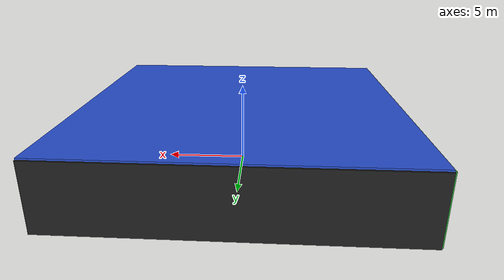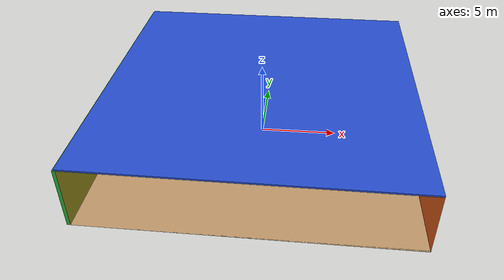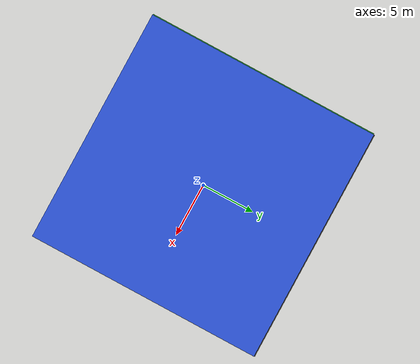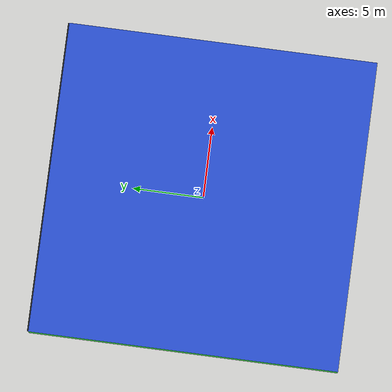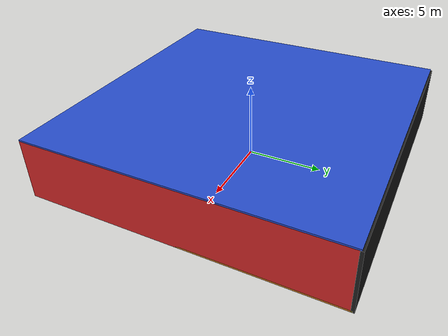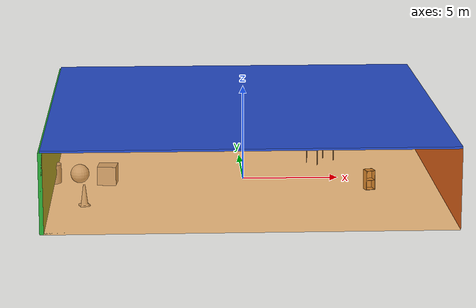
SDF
<sdf version="1.4">
 <world name="default">
  <physics type="ode">
   <max_step_size>0.001</max_step_size>
   <real_time_factor>1</real_time_factor>
   <real_time_update_rate>1000</real_time_update_rate>
   <gravity>0 0 -9.8</gravity>
  </physics>
  <scene><ambient>0.4 0.4 0.4 1</ambient><background>0.7 0.7 0.7 1</background><shadows>1</shadows></scene>
  <model name="Surrounding">
   <static>1</static>
   <link name="Ceiling">
    <collision name="Ceiling_Collision"><geometry><box><size>20 20 0.1</size></box></geometry></collision>
    <visual name="Ceiling_Visual">
     <geometry><box><size>20 20 0.1</size></box></geometry>
     <material>
      <script><uri>file://media/materials/scripts/gazebo.material</uri><name>Gazebo/BlueGlow</name></script>
     </material>
    </visual>
    <pose>0 0 4.05 0 0 0</pose>
   </link>
   <link name="Wall_South">
    <collision name="Wall_South_Collision">
     <geometry><box><size>20 0 4</size></box></geometry>
     <pose>0 0 2 0 -0 0</pose>
    </collision>
    <visual name="Wall_South_Visual">
     <pose>0 0 2 0 -0 0</pose>
     <geometry><box><size>20 0 4</size></box></geometry>
     <material>
      <script>
       <uri>file://media/materials/scripts/gazebo.material</uri>
       <name>Gazebo/OrangeTransparent</name>
      </script>
     </material>
    </visual>
    <velocity_decay><linear>0</linear><angular>0</angular></velocity_decay>
    <pose>0 -10 0 0 -0 0</pose>
   </link>
   <link name="Wall_East">
    <collision name="Wall_21_Collision">
     <geometry><box><size>20 0 4</size></box></geometry>
     <pose>0 0 2 0 -0 0</pose>
    </collision>
    <visual name="Wall_21_Visual">
     <pose>0 0 2 0 -0 0</pose>
     <geometry><box><size>20 0 4</size></box></geometry>
     <material>
      <script><uri>file://media/materials/scripts/gazebo.material</uri><name>Gazebo/RedBright</name></script>
     </material>
    </visual>
    <velocity_decay><linear>0</linear><angular>0</angular></velocity_decay>
    <pose>10 0 0 0 -0 1.5708</pose>
   </link>
   <link name="Wall_North">
    <collision name="Wall_22_Collision">
     <geometry><box><size>20 0.2 4</size></box></geometry>
     <pose>0 0 2 0 -0 0</pose>
    </collision>
    <visual name="Wall_22_Visual">
     <pose>0 0 2 0 -0 0</pose>
     <geometry><box><size>20 0.2 4</size></box></geometry>
     <material>
      <script><uri>file://media/materials/scripts/gazebo.material</uri><name>Gazebo/FlatBlack</name></script>
     </material>
    </visual>
    <velocity_decay><linear>0</linear><angular>0</angular></velocity_decay>
    <pose>0 10 0 0 -0 0</pose>
   </link>
   <link name="Wall_West">
    <collision name="Wall_23_Collision">
     <geometry><box><size>20 0.2 4</size></box></geometry>
     <pose>0 0 2 0 -0 0</pose>
    </collision>
    <visual name="Wall_23_Visual">
     <pose>0 0 2 0 -0 0</pose>
     <geometry><box><size>20 0.2 4</size></box></geometry>
     <material>
      <script><uri>file://media/materials/scripts/gazebo.material</uri><name>Gazebo/Green</name></script>
     </material>
    </visual>
    <velocity_decay><linear>0</linear><angular>0</angular></velocity_decay>
    <pose>-10 0 0 0 0 -1.5708</pose>
   </link>
   <link name="Ground_link">
    <collision name="collision">
     <pose>0 0 .05 0 -0 0</pose>
     <geometry><box><size>20 20 0.1</size></box></geometry>
    </collision>
    <visual name="visual">
     <pose>0 0 .05 0 -0 0</pose>
     <geometry><box><size>20 20 0.1</size></box></geometry>
     <material>
      <script>
       <uri>file://media/materials/scripts/gazebo.material</uri>
       <name>Gazebo/YellowTransparent</name>
      </script>
     </material>
    </visual>
   </link>
   <static>1</static>
  </model>
  <spherical_coordinates>
   <surface_model>EARTH_WGS84</surface_model>
   <latitude_deg>0</latitude_deg>
   <longitude_deg>0</longitude_deg>
   <elevation>0</elevation>
   <heading_deg>0</heading_deg>
  </spherical_coordinates>
  <light name="lightball_0" type="diffuse">
   <diffuse>0.8 0.8 0.8 1</diffuse>
   <specular>0.2 0.2 0.2 1</specular>
   <attenuation>
    <range>100</range>
    <constant>0.7</constant>
    <linear>0.01</linear>
    <quadratic>0.001</quadratic>
   </attenuation>
   <direction>-0.5 0.1 -0.9</direction>
   <pose>5.35583647014 -6.26872865497 2.7383548237 0 0 0</pose>
  </light>
  <light name="lightball_1" type="diffuse">
   <diffuse>0.8 0.8 0.8 1</diffuse>
   <specular>0.2 0.2 0.2 1</specular>
   <attenuation>
    <range>100</range>
    <constant>0.7</constant>
    <linear>0.01</linear>
    <quadratic>0.001</quadratic>
   </attenuation>
   <direction>-0.5 0.1 -0.9</direction>
   <pose>7.37864531263 -0.694443096947 3.11158615706 0 0 0</pose>
  </light>
  <light name="lightball_2" type="diffuse">
   <diffuse>0.8 0.8 0.8 1</diffuse>
   <specular>0.2 0.2 0.2 1</specular>
   <attenuation>
    <range>100</range>
    <constant>0.7</constant>
    <linear>0.01</linear>
    <quadratic>0.001</quadratic>
   </attenuation>
   <direction>-0.5 0.1 -0.9</direction>
   <pose>-8.6027419469 -4.16977454475 2.6719190572 0 0 0</pose>
  </light>
  <light name="lightball_3" type="diffuse">
   <diffuse>0.8 0.8 0.8 1</diffuse>
   <specular>0.2 0.2 0.2 1</specular>
   <attenuation>
    <range>100</range>
    <constant>0.7</constant>
    <linear>0.01</linear>
    <quadratic>0.001</quadratic>
   </attenuation>
   <direction>-0.5 0.1 -0.9</direction>
   <pose>3.0292403068 8.04551230369 3.76613373433 0 0 0</pose>
  </light>
  <light name="lightball_4" type="diffuse">
   <diffuse>0.8 0.8 0.8 1</diffuse>
   <specular>0.2 0.2 0.2 1</specular>
   <attenuation>
    <range>100</range>
    <constant>0.7</constant>
    <linear>0.01</linear>
    <quadratic>0.001</quadratic>
   </attenuation>
   <direction>-0.5 0.1 -0.9</direction>
   <pose>-4.08245771291 -1.04496222499 2.56494993358 0 0 0</pose>
  </light>
  <light name="lightball_5" type="diffuse">
   <diffuse>0.8 0.8 0.8 1</diffuse>
   <specular>0.2 0.2 0.2 1</specular>
   <attenuation>
    <range>100</range>
    <constant>0.7</constant>
    <linear>0.01</linear>
    <quadratic>0.001</quadratic>
   </attenuation>
   <direction>-0.5 0.1 -0.9</direction>
   <pose>7.32732426887 9.82869628463 1.01582549307 0 0 0</pose>
  </light>
  <light name="lightball_6" type="diffuse">
   <diffuse>0.8 0.8 0.8 1</diffuse>
   <specular>0.2 0.2 0.2 1</specular>
   <attenuation>
    <range>100</range>
    <constant>0.7</constant>
    <linear>0.01</linear>
    <quadratic>0.001</quadratic>
   </attenuation>
   <direction>-0.5 0.1 -0.9</direction>
   <pose>-6.886342215 -2.83808916721 3.55266516698 0 0 0</pose>
  </light>
  <light name="lightball_7" type="diffuse">
   <diffuse>0.8 0.8 0.8 1</diffuse>
   <specular>0.2 0.2 0.2 1</specular>
   <attenuation>
    <range>100</range>
    <constant>0.7</constant>
    <linear>0.01</linear>
    <quadratic>0.001</quadratic>
   </attenuation>
   <direction>-0.5 0.1 -0.9</direction>
   <pose>-8.27300479282 -5.37761700418 2.41635657216 0 0 0</pose>
  </light>
  <light name="lightball_8" type="diffuse">
   <diffuse>0.8 0.8 0.8 1</diffuse>
   <specular>0.2 0.2 0.2 1</specular>
   <attenuation>
    <range>100</range>
    <constant>0.7</constant>
    <linear>0.01</linear>
    <quadratic>0.001</quadratic>
   </attenuation>
   <direction>-0.5 0.1 -0.9</direction>
   <pose>8.99907744045 9.62785168899 3.16960221409 0 0 0</pose>
  </light>
  <light name="lightball_9" type="diffuse">
   <diffuse>0.8 0.8 0.8 1</diffuse>
   <specular>0.2 0.2 0.2 1</specular>
   <attenuation>
    <range>100</range>
    <constant>0.7</constant>
    <linear>0.01</linear>
    <quadratic>0.001</quadratic>
   </attenuation>
   <direction>-0.5 0.1 -0.9</direction>
   <pose>-8.89895964392 -0.51416048478 1.28644748756 0 0 0</pose>
  </light>
  <light name="lightball_10" type="diffuse">
   <diffuse>0.8 0.8 0.8 1</diffuse>
   <specular>0.2 0.2 0.2 1</specular>
   <attenuation>
    <range>100</range>
    <constant>0.7</constant>
    <linear>0.01</linear>
    <quadratic>0.001</quadratic>
   </attenuation>
   <direction>-0.5 0.1 -0.9</direction>
   <pose>0.130882321494 -3.13068602213 2.9917387268 0 0 0</pose>
  </light>
  <light name="lightball_11" type="diffuse">
   <diffuse>0.8 0.8 0.8 1</diffuse>
   <specular>0.2 0.2 0.2 1</specular>
   <attenuation>
    <range>100</range>
    <constant>0.7</constant>
    <linear>0.01</linear>
    <quadratic>0.001</quadratic>
   </attenuation>
   <direction>-0.5 0.1 -0.9</direction>
   <pose>-7.66574911584 6.86390882541 1.2959888327 0 0 0</pose>
  </light>
  <light name="lightball_12" type="diffuse">
   <diffuse>0.8 0.8 0.8 1</diffuse>
   <specular>0.2 0.2 0.2 1</specular>
   <attenuation>
    <range>100</range>
    <constant>0.7</constant>
    <linear>0.01</linear>
    <quadratic>0.001</quadratic>
   </attenuation>
   <direction>-0.5 0.1 -0.9</direction>
   <pose>0.861793830483 -5.18169751156 3.0741204678 0 0 0</pose>
  </light>
  <light name="lightball_13" type="diffuse">
   <diffuse>0.8 0.8 0.8 1</diffuse>
   <specular>0.2 0.2 0.2 1</specular>
   <attenuation>
    <range>100</range>
    <constant>0.7</constant>
    <linear>0.01</linear>
    <quadratic>0.001</quadratic>
   </attenuation>
   <direction>-0.5 0.1 -0.9</direction>
   <pose>2.92796225744 2.95462402122 3.2504960193 0 0 0</pose>
  </light>
  <include>
   <uri>model://construction_cone</uri>
   <pose>-8.16642039797 -4.92952543528 0 0 0 1.92959855529</pose>
  </include>
  <include>
   <uri>model://textured_shapes</uri>
   <pose>-8.6643614615 1.41582110511 0 0 0 1.46353230418</pose>
  </include>
  <include><uri>model://table</uri><pose>-8.53071910296 6.86456577452 0 0 0 2.0659692025</pose></include>
  <include><uri>model://table</uri><pose>4.39980426162 3.46840079254 0 0 0 0.779376250528</pose></include>
  <include><uri>model://cabinet</uri><pose>6.45012878579 -2.35217781961 0 0 0 1.85650453615</pose></include>
 </world>
</sdf>

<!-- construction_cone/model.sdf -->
<sdf version="1.5">
  <model name="Construction Cone">
    <link name="link">
      <collision name="collision">
        <geometry>
          <mesh>
            <scale>10 10 10</scale>
            <uri>file://isr-testbed/construction_cone/meshes/construction_cone.dae</uri>
          </mesh>
        </geometry>
      </collision>
      <visual name="visual">
        <geometry>
          <mesh>
            <scale>10 10 10</scale>
            <uri>file://isr-testbed/construction_cone/meshes/construction_cone.dae</uri>
          </mesh>
        </geometry>
      </visual>
    </link>
  </model>
</sdf>

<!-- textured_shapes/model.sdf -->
<sdf version="1.6">
  <model name="textured_shapes">
    <pose>0 0 0.5 0 0 0</pose>
    <link name="box">
      <pose>0 -1.5 0 0 0 0</pose>
      <collision name="collision">
        <geometry>
          <box>
            <size>1 1 1</size>
          </box>
        </geometry>
      </collision>
      <visual name="visual">
        <geometry>
          <box>
            <size>1 1 1</size>
          </box>
        </geometry>
        <material>
          <script>
            <uri>model://../model_source/models/textured_shapes/materials/scripts</uri>
            <uri>model://../model_source/models/textured_shapes/materials/textures</uri>
            <name>TexturedShape/Squares</name>
          </script>
        </material>
      </visual>
    </link>
    <link name="sphere">
      <collision name="collision">
        <geometry>
          <sphere>
            <radius>0.5</radius>
          </sphere>
        </geometry>
      </collision>
      <visual name="visual">
        <geometry>
          <sphere>
            <radius>0.5</radius>
          </sphere>
        </geometry>
        <material>
          <script>
            <uri>model://../model_source/models/textured_shapes/materials/scripts</uri>
            <uri>model://../model_source/models/textured_shapes/materials/textures</uri>
            <name>TexturedShape/Squares</name>
          </script>
        </material>
      </visual>
    </link>
    <link name="cylinder">
      <pose>0 1.5 0 0 0 0</pose>
      <collision name="collision">
        <geometry>
          <cylinder>
            <radius>0.5</radius>
            <length>1</length>
          </cylinder>
        </geometry>
      </collision>
      <visual name="visual">
        <geometry>
          <cylinder>
            <radius>0.5</radius>
            <length>1</length>
          </cylinder>
        </geometry>
        <material>
          <script>
            <uri>model://../model_source/models/textured_shapes/materials/scripts</uri>
            <uri>model://../model_source/models/textured_shapes/materials/textures</uri>
            <name>TexturedShape/Squares</name>
          </script>
        </material>
      </visual>
    </link>
  </model>
</sdf>

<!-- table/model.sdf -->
<sdf version="1.5">
  <model name="table">
    <static>true</static>
    <link name="link">
      <collision name="surface">
        <pose>0 0 1.0 0 0 0</pose>
        <geometry>
          <box>
            <size>1.5 0.8 0.03</size>
          </box>
        </geometry>
        <surface>
          <friction>
            <ode>
              <mu>0.6</mu>
              <mu2>0.6</mu2>
            </ode>
          </friction>
        </surface>
      </collision>
      <visual name="visual1">
        <pose>0 0 1.0 0 0 0</pose>
        <geometry>
          <box>
            <size>1.5 0.8 0.03</size>
          </box>
        </geometry>
        <material>
          <script>
            <uri>model://media/materials/scripts/gazebo.material</uri>
            <name>Gazebo/Wood</name>
          </script>
        </material>
      </visual>
      <collision name="front_left_leg">
        <pose>0.68 0.38 0.5 0 0 0</pose>
        <geometry>
          <cylinder>
            <radius>0.02</radius>
            <length>1.0</length>
          </cylinder>
        </geometry>
      </collision>
      <visual name="front_left_leg">
        <pose>0.68 0.38 0.5 0 0 0</pose>
        <geometry>
          <cylinder>
            <radius>0.02</radius>
            <length>1.0</length>
          </cylinder>
        </geometry>
        <material>
          <script>
            <uri>model://media/materials/scripts/gazebo.material</uri>
            <name>Gazebo/Grey</name>
          </script>
        </material>
      </visual>
      <collision name="front_right_leg">
        <pose>0.68 -0.38 0.5 0 0 0</pose>
        <geometry>
          <cylinder>
            <radius>0.02</radius>
            <length>1.0</length>
          </cylinder>
        </geometry>
      </collision>
      <visual name="front_right_leg">
        <pose>0.68 -0.38 0.5 0 0 0</pose>
        <geometry>
          <cylinder>
            <radius>0.02</radius>
            <length>1.0</length>
          </cylinder>
        </geometry>
        <material>
          <script>
            <uri>model://media/materials/scripts/gazebo.material</uri>
            <name>Gazebo/Grey</name>
          </script>
        </material>
      </visual>
      <collision name="back_right_leg">
        <pose>-0.68 -0.38 0.5 0 0 0</pose>
        <geometry>
          <cylinder>
            <radius>0.02</radius>
            <length>1.0</length>
          </cylinder>
        </geometry>
      </collision>
      <visual name="back_right_leg">
        <pose>-0.68 -0.38 0.5 0 0 0</pose>
        <geometry>
          <cylinder>
            <radius>0.02</radius>
            <length>1.0</length>
          </cylinder>
        </geometry>
        <material>
          <script>
            <uri>model://media/materials/scripts/gazebo.material</uri>
            <name>Gazebo/Grey</name>
          </script>
        </material>
      </visual>
      <collision name="back_left_leg">
        <pose>-0.68 0.38 0.5 0 0 0</pose>
        <geometry>
          <cylinder>
            <radius>0.02</radius>
            <length>1.0</length>
          </cylinder>
        </geometry>
      </collision>
      <visual name="back_left_leg">
        <pose>-0.68 0.38 0.5 0 0 0</pose>
        <geometry>
          <cylinder>
            <radius>0.02</radius>
            <length>1.0</length>
          </cylinder>
        </geometry>
        <material>
          <script>
            <uri>model://media/materials/scripts/gazebo.material</uri>
            <name>Gazebo/Grey</name>
          </script>
        </material>
      </visual>
    </link>
  </model>
</sdf>

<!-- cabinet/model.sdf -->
<sdf version="1.5">
  <model name="cabinet">
    <static>true</static>
    <link name="cabinet_bottom_plate">
      <inertial>
        <pose>0 0 -1 0 0 0</pose>
        <inertia>
          <ixx>2.050000</ixx>
          <ixy>0</ixy>
          <ixz>0</ixz>
          <iyy>2.050000</iyy>
          <iyz>0</iyz>
          <izz>2.050000</izz>
        </inertia>
        <mass>25.000000</mass>
      </inertial>
      <collision name="cabinet_bottom_plate_geom">
        <pose>0 0 0.010000 0 0 0</pose>
        <geometry>
          <box>
            <size>0.450000 0.450000 0.020000</size>
          </box>
        </geometry>
      </collision>
      <visual name="cabinet_bottom_plate_geom_visual">
        <pose>0 0 0.010000 0 0 0</pose>
        <geometry>
          <box>
            <size>0.450000 0.450000 0.020000</size>
          </box>
        </geometry>
        <material>
          <script>
            <uri>model://media/materials/scripts/gazebo.material</uri>
            <name>Gazebo/Wood</name>
          </script>
        </material>
      </visual>
      <collision name="cabinet_bottom_plate_geom_cabinet_back_plate">
        <pose>0.235000 0 0.510000 0 0 0</pose>
        <geometry>
          <box>
            <size>0.020000 0.450000 1.020000</size>
          </box>
        </geometry>
      </collision>
      <visual name="cabinet_bottom_plate_geom_cabinet_back_plate_visual">
        <pose>0.235000 0 0.510000 0 0 0</pose>
        <geometry>
          <box>
            <size>0.020000 0.450000 1.020000</size>
          </box>
        </geometry>
        <material>
          <script>
            <uri>model://media/materials/scripts/gazebo.material</uri>
            <name>Gazebo/Wood</name>
          </script>
        </material>
      </visual>
      <collision name="cabinet_bottom_plate_geom_cabinet_left_plate">
        <pose>0 0.235000 0.510000 0 0 0</pose>
        <geometry>
          <box>
            <size>0.450000 0.020000 1.020000</size>
          </box>
        </geometry>
      </collision>
      <visual name="cabinet_bottom_plate_geom_cabinet_left_plate_visual">
        <pose>0 0.235000 0.510000 0 0 0</pose>
        <geometry>
          <box>
            <size>0.450000 0.020000 1.020000</size>
          </box>
        </geometry>
        <material>
          <script>
            <uri>model://media/materials/scripts/gazebo.material</uri>
            <name>Gazebo/Wood</name>
          </script>
        </material>
      </visual>
      <collision name="cabinet_bottom_plate_geom_cabinet_middle_plate">
        <pose>0 0 0.510000 0 0 0</pose>
        <geometry>
          <box>
            <size>0.450000 0.450000 0.020000</size>
          </box>
        </geometry>
      </collision>
      <visual name="cabinet_bottom_plate_geom_cabinet_middle_plate_visual">
        <pose>0 0 0.510000 0 0 0</pose>
        <geometry>
          <box>
            <size>0.450000 0.450000 0.020000</size>
          </box>
        </geometry>
        <material>
          <script>
            <uri>model://media/materials/scripts/gazebo.material</uri>
            <name>Gazebo/Wood</name>
          </script>
        </material>
      </visual>
      <collision name="cabinet_bottom_plate_geom_cabinet_right_plate">
        <pose>0 -0.235000 0.510000 0 0 0</pose>
        <geometry>
          <box>
            <size>0.450000 0.020000 1.020000</size>
          </box>
        </geometry>
      </collision>
      <visual name="cabinet_bottom_plate_geom_cabinet_right_plate_visual">
        <pose>0 -0.235000 0.510000 0 0 0</pose>
        <geometry>
          <box>
            <size>0.450000 0.020000 1.020000</size>
          </box>
        </geometry>
        <material>
          <script>
            <uri>model://media/materials/scripts/gazebo.material</uri>
            <name>Gazebo/Wood</name>
          </script>
        </material>
      </visual>
      <collision name="cabinet_bottom_plate_geom_cabinet_top_plate">
        <pose>0 0 1.010000 0 0 0</pose>
        <geometry>
          <box>
            <size>0.450000 0.450000 0.020000</size>
          </box>
        </geometry>
      </collision>
      <visual name="cabinet_bottom_plate_geom_cabinet_top_plate_visual">
        <pose>0 0 1.010000 0 0 0</pose>
        <geometry>
          <box>
            <size>0.450000 0.450000 0.020000</size>
          </box>
        </geometry>
        <material>
          <script>
            <uri>model://media/materials/scripts/gazebo.material</uri>
            <name>Gazebo/Wood</name>
          </script>
        </material>
      </visual>
    </link>
  </model>
</sdf>
